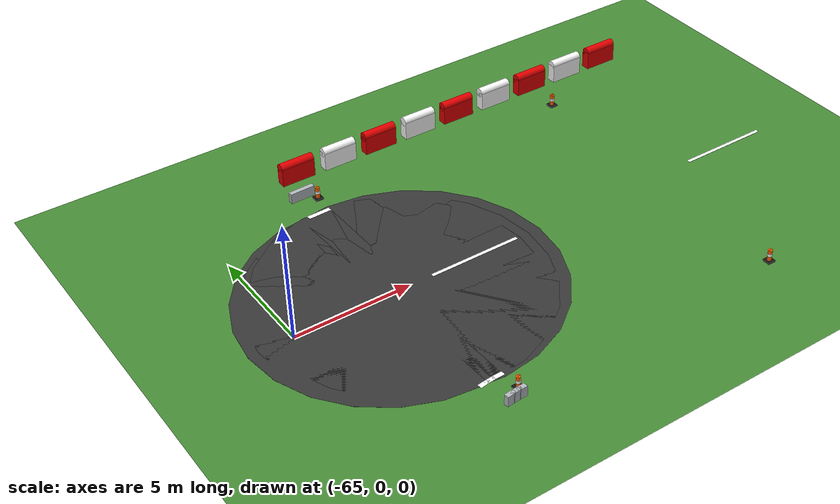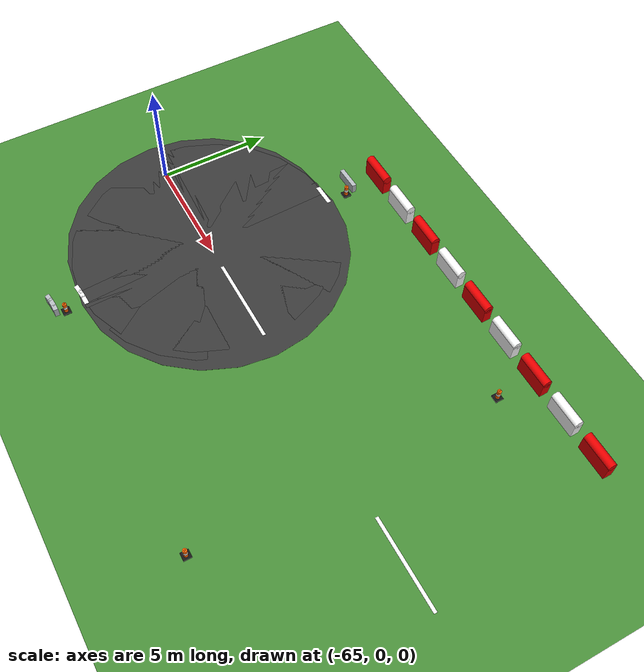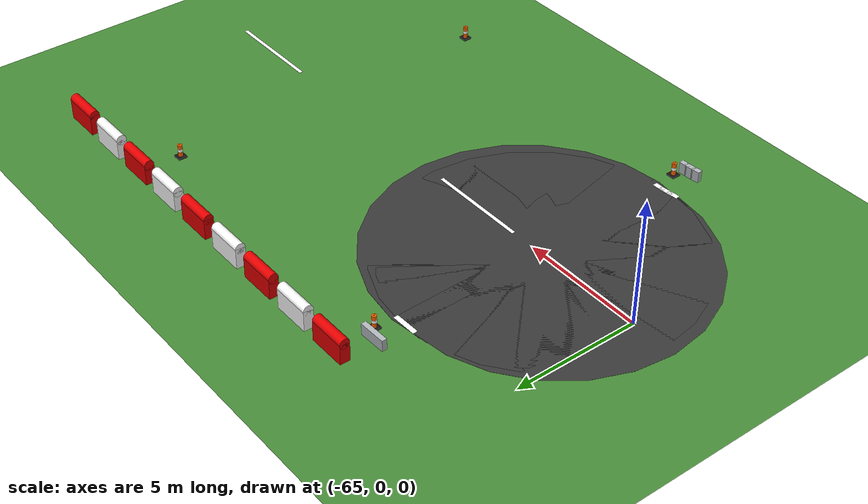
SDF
<sdf version="1.6">
 <world name="sem_silesia_ring_2026">
  <model name="ground_plane">
   <static>true</static>
   <link name="link">
    <collision name="collision">
     <geometry><plane><normal>0 0 1</normal><size>600 600</size></plane></geometry>
     <surface><friction><ode><mu>0.6</mu><mu2>0.6</mu2></ode></friction></surface>
    </collision>
    <visual name="visual">
     <geometry><plane><normal>0 0 1</normal><size>600 600</size></plane></geometry>
     <material><ambient>0.28 0.55 0.22 1</ambient><diffuse>0.28 0.55 0.22 1</diffuse></material>
    </visual>
   </link>
  </model>
  <model name="road_L_s0">
   <static>true</static>
   <pose>-60.2182 -0.0019 0.0030 0 0 3.1590</pose>
   <link name="link">
    <visual name="v">
     <geometry><box><size>0.6957 12.0000 0.0060</size></box></geometry>
     <material><ambient>0.22 0.22 0.22 1</ambient><diffuse>0.22 0.22 0.22 1</diffuse></material>
    </visual>
    <collision name="c">
     <geometry><box><size>0.6957 12.0000 0.0060</size></box></geometry>
     <surface><friction><ode><mu>0.9</mu><mu2>0.9</mu2></ode></friction></surface>
    </collision>
   </link>
  </model>
  <model name="road_L_jnt1">
   <static>true</static>
   <pose>-60.4362 -0.0076 0.0030 0 0 0</pose>
   <link name="link">
    <visual name="v">
     <geometry><cylinder><radius>6.0000</radius><length>0.0060</length></cylinder></geometry>
     <material><ambient>0.22 0.22 0.22 1</ambient><diffuse>0.22 0.22 0.22 1</diffuse></material>
    </visual>
    <collision name="c">
     <geometry><cylinder><radius>6.0000</radius><length>0.0060</length></cylinder></geometry>
     <surface><friction><ode><mu>0.9</mu><mu2>0.9</mu2></ode></friction></surface>
    </collision>
   </link>
  </model>
  <model name="road_L_s1">
   <static>true</static>
   <pose>-60.6542 -0.0171 0.0030 0 0 3.1940</pose>
   <link name="link">
    <visual name="v">
     <geometry><box><size>0.6957 12.0000 0.0060</size></box></geometry>
     <material><ambient>0.22 0.22 0.22 1</ambient><diffuse>0.22 0.22 0.22 1</diffuse></material>
    </visual>
    <collision name="c">
     <geometry><box><size>0.6957 12.0000 0.0060</size></box></geometry>
     <surface><friction><ode><mu>0.9</mu><mu2>0.9</mu2></ode></friction></surface>
    </collision>
   </link>
  </model>
  <model name="road_L_jnt2">
   <static>true</static>
   <pose>-60.8720 -0.0304 0.0030 0 0 0</pose>
   <link name="link">
    <visual name="v">
     <geometry><cylinder><radius>6.0000</radius><length>0.0060</length></cylinder></geometry>
     <material><ambient>0.22 0.22 0.22 1</ambient><diffuse>0.22 0.22 0.22 1</diffuse></material>
    </visual>
    <collision name="c">
     <geometry><cylinder><radius>6.0000</radius><length>0.0060</length></cylinder></geometry>
     <surface><friction><ode><mu>0.9</mu><mu2>0.9</mu2></ode></friction></surface>
    </collision>
   </link>
  </model>
  <model name="jnt_tl">
   <static>true</static>
   <pose>-60.0000 0.0000 0.0030 0 0 0</pose>
   <link name="link">
    <visual name="v">
     <geometry><cylinder><radius>6.1000</radius><length>0.0060</length></cylinder></geometry>
     <material><ambient>0.22 0.22 0.22 1</ambient><diffuse>0.22 0.22 0.22 1</diffuse></material>
    </visual>
    <collision name="c">
     <geometry><cylinder><radius>6.1000</radius><length>0.0060</length></cylinder></geometry>
     <surface><friction><ode><mu>0.9</mu><mu2>0.9</mu2></ode></friction></surface>
    </collision>
   </link>
  </model>
  <model name="wl_Lo_s0">
   <static>true</static>
   <pose>-60.4817 5.8937 0.0050 0 0 3.1678</pose>
   <link name="link">
    <visual name="v">
     <geometry><box><size>1.0185 0.2000 0.0040</size></box></geometry>
     <material><ambient>1 1 1 1</ambient><diffuse>1 1 1 1</diffuse></material>
    </visual>
    <collision name="c">
     <geometry><box><size>1.0185 0.2000 0.0040</size></box></geometry>
     <surface><friction><ode><mu>0.9</mu><mu2>0.9</mu2></ode></friction></surface>
    </collision>
   </link>
  </model>
  <model name="wl_Li_s0">
   <static>true</static>
   <pose>-60.1728 -5.9023 0.0050 0 0 3.1678</pose>
   <link name="link">
    <visual name="v">
     <geometry><box><size>0.4008 0.2000 0.0040</size></box></geometry>
     <material><ambient>1 1 1 1</ambient><diffuse>1 1 1 1</diffuse></material>
    </visual>
    <collision name="c">
     <geometry><box><size>0.4008 0.2000 0.0040</size></box></geometry>
     <surface><friction><ode><mu>0.9</mu><mu2>0.9</mu2></ode></friction></surface>
    </collision>
   </link>
  </model>
  <model name="wl_Li_jnt1">
   <static>true</static>
   <pose>-60.3454 -5.9090 0.0050 0 0 0</pose>
   <link name="link">
    <visual name="v">
     <geometry><cylinder><radius>0.1000</radius><length>0.0040</length></cylinder></geometry>
     <material><ambient>1 1 1 1</ambient><diffuse>1 1 1 1</diffuse></material>
    </visual>
    <collision name="c">
     <geometry><cylinder><radius>0.1000</radius><length>0.0040</length></cylinder></geometry>
     <surface><friction><ode><mu>0.9</mu><mu2>0.9</mu2></ode></friction></surface>
    </collision>
   </link>
  </model>
  <model name="wl_Li_s1">
   <static>true</static>
   <pose>-60.5178 -5.9203 0.0050 0 0 3.2201</pose>
   <link name="link">
    <visual name="v">
     <geometry><box><size>0.4008 0.2000 0.0040</size></box></geometry>
     <material><ambient>1 1 1 1</ambient><diffuse>1 1 1 1</diffuse></material>
    </visual>
    <collision name="c">
     <geometry><box><size>0.4008 0.2000 0.0040</size></box></geometry>
     <surface><friction><ode><mu>0.9</mu><mu2>0.9</mu2></ode></friction></surface>
    </collision>
   </link>
  </model>
  <model name="wl_Li_jnt2">
   <static>true</static>
   <pose>-60.6899 -5.9362 0.0050 0 0 0</pose>
   <link name="link">
    <visual name="v">
     <geometry><cylinder><radius>0.1000</radius><length>0.0040</length></cylinder></geometry>
     <material><ambient>1 1 1 1</ambient><diffuse>1 1 1 1</diffuse></material>
    </visual>
    <collision name="c">
     <geometry><cylinder><radius>0.1000</radius><length>0.0040</length></cylinder></geometry>
     <surface><friction><ode><mu>0.9</mu><mu2>0.9</mu2></ode></friction></surface>
    </collision>
   </link>
  </model>
  <model name="wl_Li_s2">
   <static>true</static>
   <pose>-60.8615 -5.9565 0.0050 0 0 3.2725</pose>
   <link name="link">
    <visual name="v">
     <geometry><box><size>0.4008 0.2000 0.0040</size></box></geometry>
     <material><ambient>1 1 1 1</ambient><diffuse>1 1 1 1</diffuse></material>
    </visual>
    <collision name="c">
     <geometry><box><size>0.4008 0.2000 0.0040</size></box></geometry>
     <surface><friction><ode><mu>0.9</mu><mu2>0.9</mu2></ode></friction></surface>
    </collision>
   </link>
  </model>
  <model name="cd_s1_8">
   <static>true</static>
   <pose>-44.0000 0.0000 0.0050 0 0 0.0000</pose>
   <link name="link">
    <visual name="v">
     <geometry><box><size>4.0000 0.1500 0.0080</size></box></geometry>
     <material><ambient>1 1 1 1</ambient><diffuse>1 1 1 1</diffuse></material>
    </visual>
    <collision name="c">
     <geometry><box><size>4.0000 0.1500 0.0080</size></box></geometry>
     <surface><friction><ode><mu>0.9</mu><mu2>0.9</mu2></ode></friction></surface>
    </collision>
   </link>
  </model>
  <model name="cd_s1_9">
   <static>true</static>
   <pose>-57.0000 0.0000 0.0050 0 0 0.0000</pose>
   <link name="link">
    <visual name="v">
     <geometry><box><size>4.0000 0.1500 0.0080</size></box></geometry>
     <material><ambient>1 1 1 1</ambient><diffuse>1 1 1 1</diffuse></material>
    </visual>
    <collision name="c">
     <geometry><box><size>4.0000 0.1500 0.0080</size></box></geometry>
     <surface><friction><ode><mu>0.9</mu><mu2>0.9</mu2></ode></friction></surface>
    </collision>
   </link>
  </model>
  <model name="arm_Lo_s0">
   <static>true</static>
   <pose>-60.5157 7.1932 0.2250 0 0 3.1678</pose>
   <link name="link">
    <visual name="v">
     <geometry><box><size>1.0866 0.2000 0.4500</size></box></geometry>
     <material><ambient>0.70 0.72 0.74 1</ambient><diffuse>0.70 0.72 0.74 1</diffuse></material>
    </visual>
    <collision name="c">
     <geometry><box><size>1.0866 0.2000 0.4500</size></box></geometry>
     <surface><friction><ode><mu>0.9</mu><mu2>0.9</mu2></ode></friction></surface>
    </collision>
   </link>
  </model>
  <model name="arm_Li_s0">
   <static>true</static>
   <pose>-60.1387 -7.2018 0.2250 0 0 3.1678</pose>
   <link name="link">
    <visual name="v">
     <geometry><box><size>0.3327 0.2000 0.4500</size></box></geometry>
     <material><ambient>0.70 0.72 0.74 1</ambient><diffuse>0.70 0.72 0.74 1</diffuse></material>
    </visual>
    <collision name="c">
     <geometry><box><size>0.3327 0.2000 0.4500</size></box></geometry>
     <surface><friction><ode><mu>0.9</mu><mu2>0.9</mu2></ode></friction></surface>
    </collision>
   </link>
  </model>
  <model name="arm_Li_jnt1">
   <static>true</static>
   <pose>-60.2774 -7.2073 0.2250 0 0 0</pose>
   <link name="link">
    <visual name="v">
     <geometry><cylinder><radius>0.1000</radius><length>0.4500</length></cylinder></geometry>
     <material><ambient>0.70 0.72 0.74 1</ambient><diffuse>0.70 0.72 0.74 1</diffuse></material>
    </visual>
    <collision name="c">
     <geometry><cylinder><radius>0.1000</radius><length>0.4500</length></cylinder></geometry>
     <surface><friction><ode><mu>0.9</mu><mu2>0.9</mu2></ode></friction></surface>
    </collision>
   </link>
  </model>
  <model name="arm_Li_s1">
   <static>true</static>
   <pose>-60.4158 -7.2163 0.2250 0 0 3.2201</pose>
   <link name="link">
    <visual name="v">
     <geometry><box><size>0.3327 0.2000 0.4500</size></box></geometry>
     <material><ambient>0.70 0.72 0.74 1</ambient><diffuse>0.70 0.72 0.74 1</diffuse></material>
    </visual>
    <collision name="c">
     <geometry><box><size>0.3327 0.2000 0.4500</size></box></geometry>
     <surface><friction><ode><mu>0.9</mu><mu2>0.9</mu2></ode></friction></surface>
    </collision>
   </link>
  </model>
  <model name="arm_Li_jnt2">
   <static>true</static>
   <pose>-60.5540 -7.2290 0.2250 0 0 0</pose>
   <link name="link">
    <visual name="v">
     <geometry><cylinder><radius>0.1000</radius><length>0.4500</length></cylinder></geometry>
     <material><ambient>0.70 0.72 0.74 1</ambient><diffuse>0.70 0.72 0.74 1</diffuse></material>
    </visual>
    <collision name="c">
     <geometry><cylinder><radius>0.1000</radius><length>0.4500</length></cylinder></geometry>
     <surface><friction><ode><mu>0.9</mu><mu2>0.9</mu2></ode></friction></surface>
    </collision>
   </link>
  </model>
  <model name="arm_Li_s2">
   <static>true</static>
   <pose>-60.6918 -7.2453 0.2250 0 0 3.2725</pose>
   <link name="link">
    <visual name="v">
     <geometry><box><size>0.3327 0.2000 0.4500</size></box></geometry>
     <material><ambient>0.70 0.72 0.74 1</ambient><diffuse>0.70 0.72 0.74 1</diffuse></material>
    </visual>
    <collision name="c">
     <geometry><box><size>0.3327 0.2000 0.4500</size></box></geometry>
     <surface><friction><ode><mu>0.9</mu><mu2>0.9</mu2></ode></friction></surface>
    </collision>
   </link>
  </model>
  <model name="p_bar_L_in_0">
   <static>true</static>
   <pose>-60.0000 8.5000 0.4 0 0 0.0000</pose>
   <link name="link">
    <visual name="v">
     <geometry><box><size>1.5 0.4 0.8</size></box></geometry>
     <material><ambient>0.9 0 0 1</ambient><diffuse>0.9 0 0 1</diffuse></material>
    </visual>
    <visual name="top_round">
     <pose>0 0 0.4 0 1.5708 0</pose>
     <geometry><cylinder><radius>0.2</radius><length>1.5</length></cylinder></geometry>
     <material><ambient>0.9 0 0 1</ambient><diffuse>0.9 0 0 1</diffuse></material>
    </visual>
    <collision name="c"><geometry><box><size>1.5 0.4 0.8</size></box></geometry></collision>
   </link>
  </model>
  <model name="p_bar_L_in_1">
   <static>true</static>
   <pose>-58.0000 8.5000 0.4 0 0 0.0000</pose>
   <link name="link">
    <visual name="v">
     <geometry><box><size>1.5 0.4 0.8</size></box></geometry>
     <material><ambient>1 1 1 1</ambient><diffuse>1 1 1 1</diffuse></material>
    </visual>
    <visual name="top_round">
     <pose>0 0 0.4 0 1.5708 0</pose>
     <geometry><cylinder><radius>0.2</radius><length>1.5</length></cylinder></geometry>
     <material><ambient>1 1 1 1</ambient><diffuse>1 1 1 1</diffuse></material>
    </visual>
    <collision name="c"><geometry><box><size>1.5 0.4 0.8</size></box></geometry></collision>
   </link>
  </model>
  <model name="p_bar_L_in_2">
   <static>true</static>
   <pose>-56.0000 8.5000 0.4 0 0 0.0000</pose>
   <link name="link">
    <visual name="v">
     <geometry><box><size>1.5 0.4 0.8</size></box></geometry>
     <material><ambient>0.9 0 0 1</ambient><diffuse>0.9 0 0 1</diffuse></material>
    </visual>
    <visual name="top_round">
     <pose>0 0 0.4 0 1.5708 0</pose>
     <geometry><cylinder><radius>0.2</radius><length>1.5</length></cylinder></geometry>
     <material><ambient>0.9 0 0 1</ambient><diffuse>0.9 0 0 1</diffuse></material>
    </visual>
    <collision name="c"><geometry><box><size>1.5 0.4 0.8</size></box></geometry></collision>
   </link>
  </model>
  <model name="p_bar_L_in_3">
   <static>true</static>
   <pose>-54.0000 8.5000 0.4 0 0 0.0000</pose>
   <link name="link">
    <visual name="v">
     <geometry><box><size>1.5 0.4 0.8</size></box></geometry>
     <material><ambient>1 1 1 1</ambient><diffuse>1 1 1 1</diffuse></material>
    </visual>
    <visual name="top_round">
     <pose>0 0 0.4 0 1.5708 0</pose>
     <geometry><cylinder><radius>0.2</radius><length>1.5</length></cylinder></geometry>
     <material><ambient>1 1 1 1</ambient><diffuse>1 1 1 1</diffuse></material>
    </visual>
    <collision name="c"><geometry><box><size>1.5 0.4 0.8</size></box></geometry></collision>
   </link>
  </model>
  <model name="p_bar_L_in_4">
   <static>true</static>
   <pose>-52.0000 8.5000 0.4 0 0 0.0000</pose>
   <link name="link">
    <visual name="v">
     <geometry><box><size>1.5 0.4 0.8</size></box></geometry>
     <material><ambient>0.9 0 0 1</ambient><diffuse>0.9 0 0 1</diffuse></material>
    </visual>
    <visual name="top_round">
     <pose>0 0 0.4 0 1.5708 0</pose>
     <geometry><cylinder><radius>0.2</radius><length>1.5</length></cylinder></geometry>
     <material><ambient>0.9 0 0 1</ambient><diffuse>0.9 0 0 1</diffuse></material>
    </visual>
    <collision name="c"><geometry><box><size>1.5 0.4 0.8</size></box></geometry></collision>
   </link>
  </model>
  <model name="p_bar_L_in_5">
   <static>true</static>
   <pose>-50.0000 8.5000 0.4 0 0 0.0000</pose>
   <link name="link">
    <visual name="v">
     <geometry><box><size>1.5 0.4 0.8</size></box></geometry>
     <material><ambient>1 1 1 1</ambient><diffuse>1 1 1 1</diffuse></material>
    </visual>
    <visual name="top_round">
     <pose>0 0 0.4 0 1.5708 0</pose>
     <geometry><cylinder><radius>0.2</radius><length>1.5</length></cylinder></geometry>
     <material><ambient>1 1 1 1</ambient><diffuse>1 1 1 1</diffuse></material>
    </visual>
    <collision name="c"><geometry><box><size>1.5 0.4 0.8</size></box></geometry></collision>
   </link>
  </model>
  <model name="p_bar_L_in_6">
   <static>true</static>
   <pose>-48.0000 8.5000 0.4 0 0 0.0000</pose>
   <link name="link">
    <visual name="v">
     <geometry><box><size>1.5 0.4 0.8</size></box></geometry>
     <material><ambient>0.9 0 0 1</ambient><diffuse>0.9 0 0 1</diffuse></material>
    </visual>
    <visual name="top_round">
     <pose>0 0 0.4 0 1.5708 0</pose>
     <geometry><cylinder><radius>0.2</radius><length>1.5</length></cylinder></geometry>
     <material><ambient>0.9 0 0 1</ambient><diffuse>0.9 0 0 1</diffuse></material>
    </visual>
    <collision name="c"><geometry><box><size>1.5 0.4 0.8</size></box></geometry></collision>
   </link>
  </model>
  <model name="p_bar_L_in_7">
   <static>true</static>
   <pose>-46.0000 8.5000 0.4 0 0 0.0000</pose>
   <link name="link">
    <visual name="v">
     <geometry><box><size>1.5 0.4 0.8</size></box></geometry>
     <material><ambient>1 1 1 1</ambient><diffuse>1 1 1 1</diffuse></material>
    </visual>
    <visual name="top_round">
     <pose>0 0 0.4 0 1.5708 0</pose>
     <geometry><cylinder><radius>0.2</radius><length>1.5</length></cylinder></geometry>
     <material><ambient>1 1 1 1</ambient><diffuse>1 1 1 1</diffuse></material>
    </visual>
    <collision name="c"><geometry><box><size>1.5 0.4 0.8</size></box></geometry></collision>
   </link>
  </model>
  <model name="p_bar_L_in_8">
   <static>true</static>
   <pose>-44.0000 8.5000 0.4 0 0 0.0000</pose>
   <link name="link">
    <visual name="v">
     <geometry><box><size>1.5 0.4 0.8</size></box></geometry>
     <material><ambient>0.9 0 0 1</ambient><diffuse>0.9 0 0 1</diffuse></material>
    </visual>
    <visual name="top_round">
     <pose>0 0 0.4 0 1.5708 0</pose>
     <geometry><cylinder><radius>0.2</radius><length>1.5</length></cylinder></geometry>
     <material><ambient>0.9 0 0 1</ambient><diffuse>0.9 0 0 1</diffuse></material>
    </visual>
    <collision name="c"><geometry><box><size>1.5 0.4 0.8</size></box></geometry></collision>
   </link>
  </model>
  <model name="cn_s1n_-48">
   <static>true</static>
   <pose>-48.0000 6.8000 0 0 0 0</pose>
   <link name="link">
    <visual name="base">
     <pose>0 0 0.03 0 0 0</pose>
     <geometry><box><size>0.35 0.35 0.06</size></box></geometry>
     <material><ambient>0.08 0.08 0.08 1</ambient><diffuse>0.08 0.08 0.08 1</diffuse></material>
    </visual>
    <visual name="body">
     <pose>0 0 0.30 0 0 0</pose>
     <geometry><cylinder><radius>0.09</radius><length>0.50</length></cylinder></geometry>
     <material><ambient>1.0 0.38 0.0 1</ambient><diffuse>1.0 0.38 0.0 1</diffuse></material>
    </visual>
    <visual name="stripe">
     <pose>0 0 0.32 0 0 0</pose>
     <geometry><cylinder><radius>0.095</radius><length>0.12</length></cylinder></geometry>
     <material><ambient>1 1 1 1</ambient><diffuse>1 1 1 1</diffuse></material>
    </visual>
    <visual name="tip">
     <pose>0 0 0.57 0 0 0</pose>
     <geometry><sphere><radius>0.04</radius></sphere></geometry>
     <material><ambient>1.0 0.38 0.0 1</ambient><diffuse>1.0 0.38 0.0 1</diffuse></material>
    </visual>
    <collision name="c">
     <pose>0 0 0.28 0 0 0</pose>
     <geometry><cylinder><radius>0.09</radius><length>0.56</length></cylinder></geometry>
    </collision>
   </link>
  </model>
  <model name="cn_s1n_-60">
   <static>true</static>
   <pose>-60.0000 6.8000 0 0 0 0</pose>
   <link name="link">
    <visual name="base">
     <pose>0 0 0.03 0 0 0</pose>
     <geometry><box><size>0.35 0.35 0.06</size></box></geometry>
     <material><ambient>0.08 0.08 0.08 1</ambient><diffuse>0.08 0.08 0.08 1</diffuse></material>
    </visual>
    <visual name="body">
     <pose>0 0 0.30 0 0 0</pose>
     <geometry><cylinder><radius>0.09</radius><length>0.50</length></cylinder></geometry>
     <material><ambient>1.0 0.38 0.0 1</ambient><diffuse>1.0 0.38 0.0 1</diffuse></material>
    </visual>
    <visual name="stripe">
     <pose>0 0 0.32 0 0 0</pose>
     <geometry><cylinder><radius>0.095</radius><length>0.12</length></cylinder></geometry>
     <material><ambient>1 1 1 1</ambient><diffuse>1 1 1 1</diffuse></material>
    </visual>
    <visual name="tip">
     <pose>0 0 0.57 0 0 0</pose>
     <geometry><sphere><radius>0.04</radius></sphere></geometry>
     <material><ambient>1.0 0.38 0.0 1</ambient><diffuse>1.0 0.38 0.0 1</diffuse></material>
    </visual>
    <collision name="c">
     <pose>0 0 0.28 0 0 0</pose>
     <geometry><cylinder><radius>0.09</radius><length>0.56</length></cylinder></geometry>
    </collision>
   </link>
  </model>
  <model name="cn_s1s_-48">
   <static>true</static>
   <pose>-48.0000 -6.8000 0 0 0 0</pose>
   <link name="link">
    <visual name="base">
     <pose>0 0 0.03 0 0 0</pose>
     <geometry><box><size>0.35 0.35 0.06</size></box></geometry>
     <material><ambient>0.08 0.08 0.08 1</ambient><diffuse>0.08 0.08 0.08 1</diffuse></material>
    </visual>
    <visual name="body">
     <pose>0 0 0.30 0 0 0</pose>
     <geometry><cylinder><radius>0.09</radius><length>0.50</length></cylinder></geometry>
     <material><ambient>1.0 0.38 0.0 1</ambient><diffuse>1.0 0.38 0.0 1</diffuse></material>
    </visual>
    <visual name="stripe">
     <pose>0 0 0.32 0 0 0</pose>
     <geometry><cylinder><radius>0.095</radius><length>0.12</length></cylinder></geometry>
     <material><ambient>1 1 1 1</ambient><diffuse>1 1 1 1</diffuse></material>
    </visual>
    <visual name="tip">
     <pose>0 0 0.57 0 0 0</pose>
     <geometry><sphere><radius>0.04</radius></sphere></geometry>
     <material><ambient>1.0 0.38 0.0 1</ambient><diffuse>1.0 0.38 0.0 1</diffuse></material>
    </visual>
    <collision name="c">
     <pose>0 0 0.28 0 0 0</pose>
     <geometry><cylinder><radius>0.09</radius><length>0.56</length></cylinder></geometry>
    </collision>
   </link>
  </model>
  <model name="cn_s1s_-60">
   <static>true</static>
   <pose>-60.0000 -6.8000 0 0 0 0</pose>
   <link name="link">
    <visual name="base">
     <pose>0 0 0.03 0 0 0</pose>
     <geometry><box><size>0.35 0.35 0.06</size></box></geometry>
     <material><ambient>0.08 0.08 0.08 1</ambient><diffuse>0.08 0.08 0.08 1</diffuse></material>
    </visual>
    <visual name="body">
     <pose>0 0 0.30 0 0 0</pose>
     <geometry><cylinder><radius>0.09</radius><length>0.50</length></cylinder></geometry>
     <material><ambient>1.0 0.38 0.0 1</ambient><diffuse>1.0 0.38 0.0 1</diffuse></material>
    </visual>
    <visual name="stripe">
     <pose>0 0 0.32 0 0 0</pose>
     <geometry><cylinder><radius>0.095</radius><length>0.12</length></cylinder></geometry>
     <material><ambient>1 1 1 1</ambient><diffuse>1 1 1 1</diffuse></material>
    </visual>
    <visual name="tip">
     <pose>0 0 0.57 0 0 0</pose>
     <geometry><sphere><radius>0.04</radius></sphere></geometry>
     <material><ambient>1.0 0.38 0.0 1</ambient><diffuse>1.0 0.38 0.0 1</diffuse></material>
    </visual>
    <collision name="c">
     <pose>0 0 0.28 0 0 0</pose>
     <geometry><cylinder><radius>0.09</radius><length>0.56</length></cylinder></geometry>
    </collision>
   </link>
  </model>
  <model name="cn_Lo_0">
   <static>true</static>
   <pose>-60.0000 6.8000 0 0 0 0</pose>
   <link name="link">
    <visual name="base">
     <pose>0 0 0.03 0 0 0</pose>
     <geometry><box><size>0.35 0.35 0.06</size></box></geometry>
     <material><ambient>0.08 0.08 0.08 1</ambient><diffuse>0.08 0.08 0.08 1</diffuse></material>
    </visual>
    <visual name="body">
     <pose>0 0 0.30 0 0 0</pose>
     <geometry><cylinder><radius>0.09</radius><length>0.50</length></cylinder></geometry>
     <material><ambient>1.0 0.38 0.0 1</ambient><diffuse>1.0 0.38 0.0 1</diffuse></material>
    </visual>
    <visual name="stripe">
     <pose>0 0 0.32 0 0 0</pose>
     <geometry><cylinder><radius>0.095</radius><length>0.12</length></cylinder></geometry>
     <material><ambient>1 1 1 1</ambient><diffuse>1 1 1 1</diffuse></material>
    </visual>
    <visual name="tip">
     <pose>0 0 0.57 0 0 0</pose>
     <geometry><sphere><radius>0.04</radius></sphere></geometry>
     <material><ambient>1.0 0.38 0.0 1</ambient><diffuse>1.0 0.38 0.0 1</diffuse></material>
    </visual>
    <collision name="c">
     <pose>0 0 0.28 0 0 0</pose>
     <geometry><cylinder><radius>0.09</radius><length>0.56</length></cylinder></geometry>
    </collision>
   </link>
  </model>
  <model name="cn_Li_0">
   <static>true</static>
   <pose>-60.0000 -6.8000 0 0 0 0</pose>
   <link name="link">
    <visual name="base">
     <pose>0 0 0.03 0 0 0</pose>
     <geometry><box><size>0.35 0.35 0.06</size></box></geometry>
     <material><ambient>0.08 0.08 0.08 1</ambient><diffuse>0.08 0.08 0.08 1</diffuse></material>
    </visual>
    <visual name="body">
     <pose>0 0 0.30 0 0 0</pose>
     <geometry><cylinder><radius>0.09</radius><length>0.50</length></cylinder></geometry>
     <material><ambient>1.0 0.38 0.0 1</ambient><diffuse>1.0 0.38 0.0 1</diffuse></material>
    </visual>
    <visual name="stripe">
     <pose>0 0 0.32 0 0 0</pose>
     <geometry><cylinder><radius>0.095</radius><length>0.12</length></cylinder></geometry>
     <material><ambient>1 1 1 1</ambient><diffuse>1 1 1 1</diffuse></material>
    </visual>
    <visual name="tip">
     <pose>0 0 0.57 0 0 0</pose>
     <geometry><sphere><radius>0.04</radius></sphere></geometry>
     <material><ambient>1.0 0.38 0.0 1</ambient><diffuse>1.0 0.38 0.0 1</diffuse></material>
    </visual>
    <collision name="c">
     <pose>0 0 0.28 0 0 0</pose>
     <geometry><cylinder><radius>0.09</radius><length>0.56</length></cylinder></geometry>
    </collision>
   </link>
  </model>
 </world>
</sdf>
